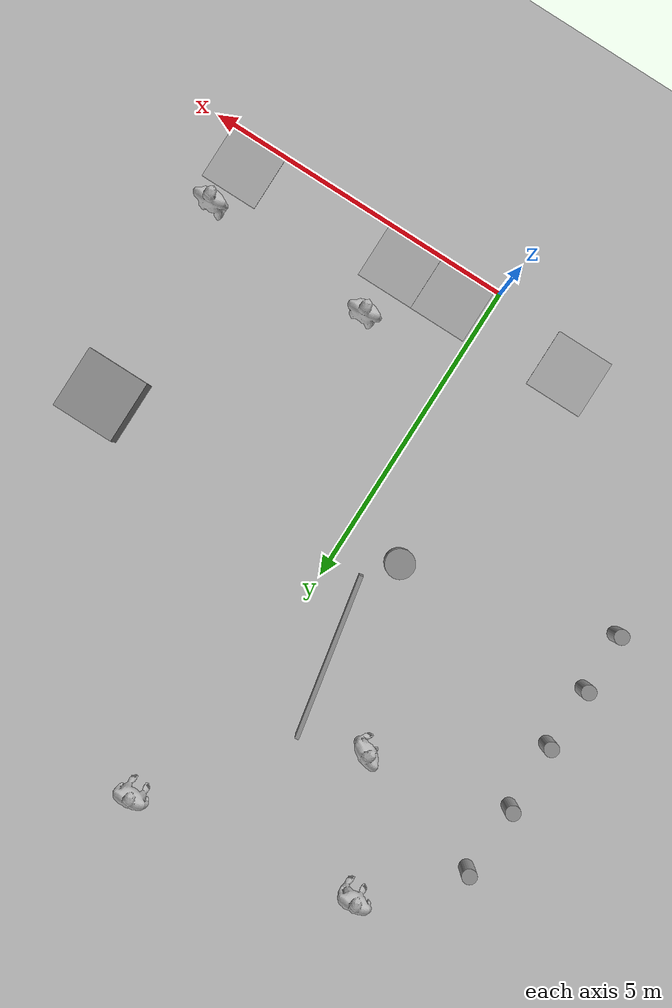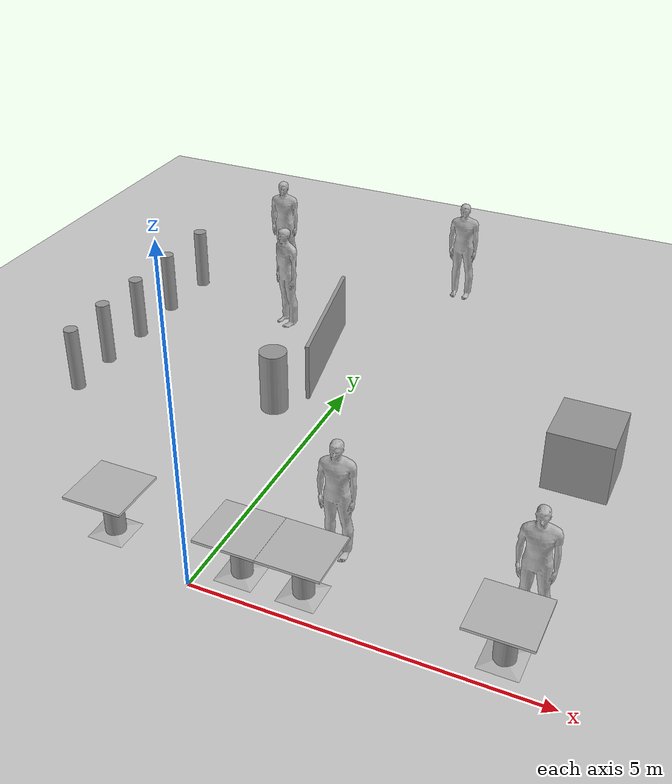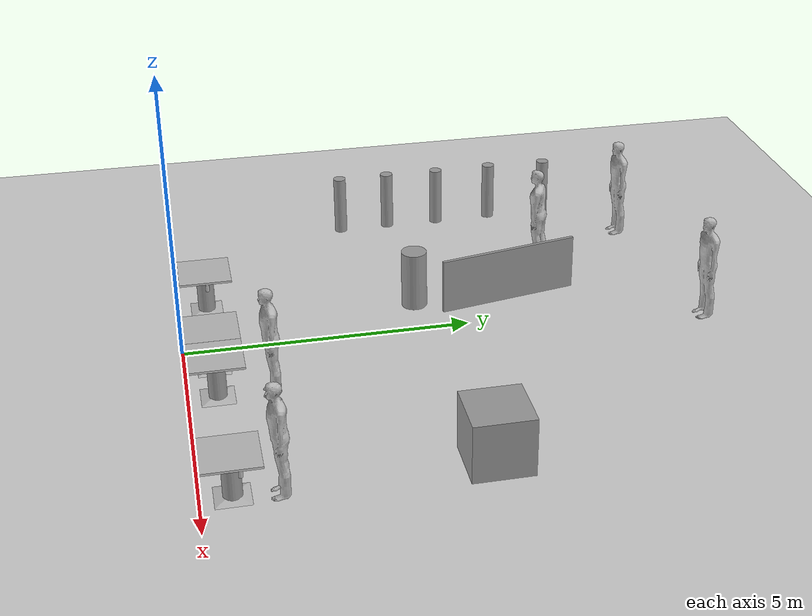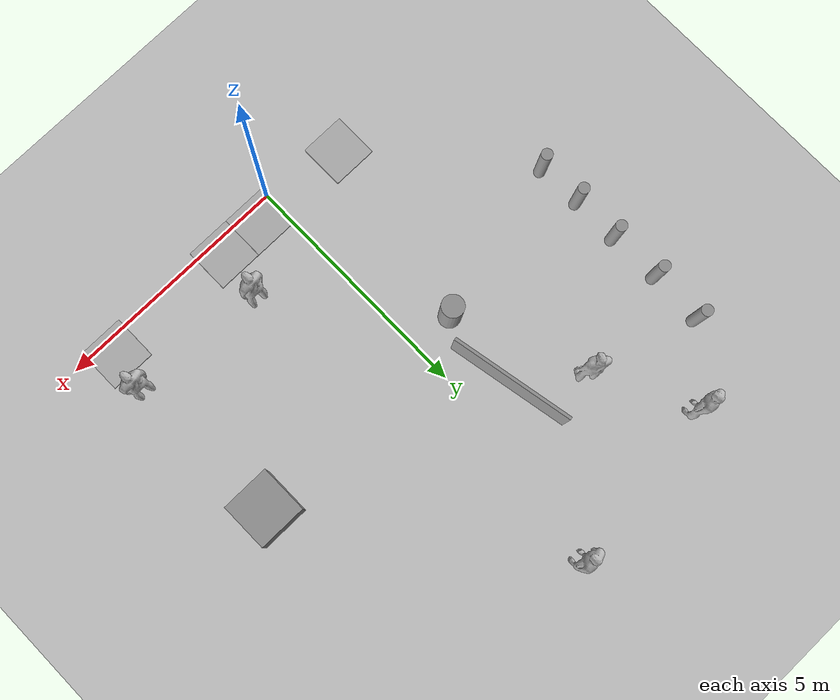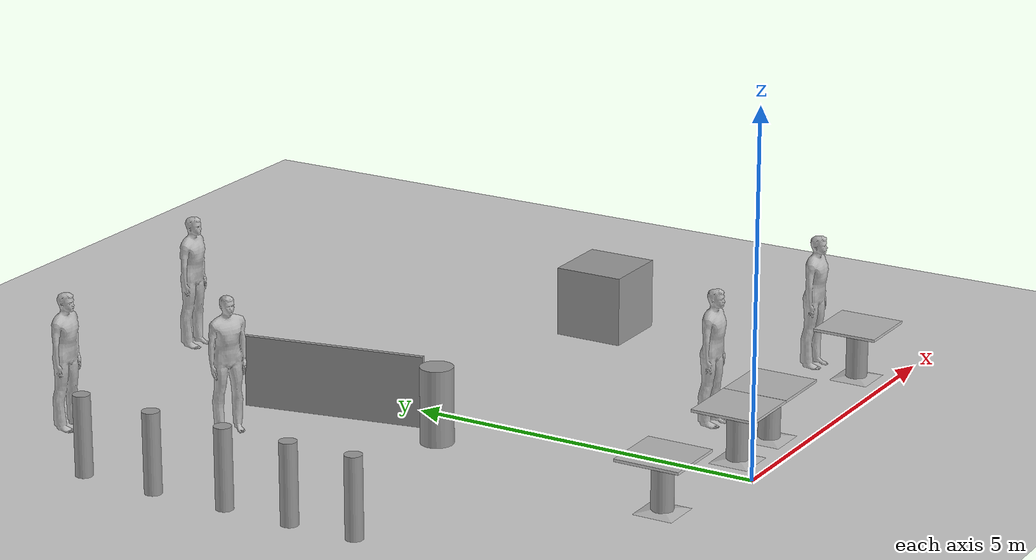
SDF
<sdf version="1.6">
 <world name="default">
  <model name="ground_plane">
   <static>1</static>
   <link name="link">
    <collision name="collision">
     <geometry><plane><normal>0 0 1</normal><size>100 100</size></plane></geometry>
     <surface><friction><ode><mu>100</mu><mu2>50</mu2></ode></friction></surface>
    </collision>
    <visual name="visual">
     <cast_shadows>0</cast_shadows>
     <geometry><plane><normal>0 0 1</normal><size>100 100</size></plane></geometry>
     <material>
      <script><uri>file://media/materials/scripts/gazebo.material</uri><name>Gazebo/Grey</name></script>
     </material>
    </visual>
   </link>
  </model>
  <model name="person_standing">
   <link name="link">
    <inertial>
     <pose>0 -0.1 0.95 0 -0 0</pose>
     <mass>80</mass>
     <inertia><ixx>24.88</ixx><ixy>0</ixy><ixz>0</ixz><iyy>25.73</iyy><iyz>0</iyz><izz>2.48</izz></inertia>
    </inertial>
    <collision name="bottom">
     <pose>0 -0.1 0.01 0 -0 0</pose>
     <geometry><box><size>0.5 0.35 0.02</size></box></geometry>
    </collision>
    <collision name="person">
     <pose>0 0 0.02 0.04 -0 0</pose>
     <geometry><mesh><uri>model://person_standing/meshes/standing.dae</uri></mesh></geometry>
    </collision>
    <visual name="visual">
     <pose>0 0 0.02 0.04 -0 0</pose>
     <geometry><mesh><uri>model://person_standing/meshes/standing.dae</uri></mesh></geometry>
    </visual>
   </link>
   <pose>-1.91141 6.86082 -1e-06 -1e-06 1e-06 -0.572801</pose>
  </model>
  <model name="person_standing_0">
   <link name="link">
    <inertial>
     <pose>0 -0.1 0.95 0 -0 0</pose>
     <mass>80</mass>
     <inertia><ixx>24.88</ixx><ixy>0</ixy><ixz>0</ixz><iyy>25.73</iyy><iyz>0</iyz><izz>2.48</izz></inertia>
    </inertial>
    <collision name="bottom">
     <pose>0 -0.1 0.01 0 -0 0</pose>
     <geometry><box><size>0.5 0.35 0.02</size></box></geometry>
    </collision>
    <collision name="person">
     <pose>0 0 0.02 0.04 -0 0</pose>
     <geometry><mesh><uri>model://person_standing/meshes/standing.dae</uri></mesh></geometry>
    </collision>
    <visual name="visual">
     <pose>0 0 0.02 0.04 -0 0</pose>
     <geometry><mesh><uri>model://person_standing/meshes/standing.dae</uri></mesh></geometry>
    </visual>
   </link>
   <pose>0.595831 9.25089 -1e-06 -1e-06 1e-06 -0.001806</pose>
  </model>
  <model name="person_standing_1">
   <link name="link">
    <inertial>
     <pose>0 -0.1 0.95 0 -0 0</pose>
     <mass>80</mass>
     <inertia><ixx>24.88</ixx><ixy>0</ixy><ixz>0</ixz><iyy>25.73</iyy><iyz>0</iyz><izz>2.48</izz></inertia>
    </inertial>
    <collision name="bottom">
     <pose>0 -0.1 0.01 0 -0 0</pose>
     <geometry><box><size>0.5 0.35 0.02</size></box></geometry>
    </collision>
    <collision name="person">
     <pose>0 0 0.02 0.04 -0 0</pose>
     <geometry><mesh><uri>model://person_standing/meshes/standing.dae</uri></mesh></geometry>
    </collision>
    <visual name="visual">
     <pose>0 0 0.02 0.04 -0 0</pose>
     <geometry><mesh><uri>model://person_standing/meshes/standing.dae</uri></mesh></geometry>
    </visual>
   </link>
   <pose>4.29476 1.29139 0 -1e-06 -1e-06 -0.002117</pose>
  </model>
  <model name="person_standing_1_clone_5">
   <link name="link">
    <inertial>
     <pose>0 -0.1 0.95 0 -0 0</pose>
     <mass>80</mass>
     <inertia><ixx>24.88</ixx><ixy>0</ixy><ixz>0</ixz><iyy>25.73</iyy><iyz>0</iyz><izz>2.48</izz></inertia>
    </inertial>
    <collision name="bottom">
     <pose>0 -0.1 0.01 0 -0 0</pose>
     <geometry><box><size>0.5 0.35 0.02</size></box></geometry>
    </collision>
    <collision name="person">
     <pose>0 0 0.02 0.04 -0 0</pose>
     <geometry><mesh><uri>model://person_standing/meshes/standing.dae</uri></mesh></geometry>
    </collision>
    <visual name="visual">
     <pose>0 0 0.02 0.04 -0 0</pose>
     <geometry><mesh><uri>model://person_standing/meshes/standing.dae</uri></mesh></geometry>
    </visual>
   </link>
   <pose>1.53594 1.46348 0 1e-06 1e-06 -0.002811</pose>
  </model>
  <model name="cafe_table_clone_4">
   <link name="link">
    <visual name="visual">
     <geometry><mesh><uri>model://cafe_table/meshes/cafe_table.dae</uri></mesh></geometry>
     <material><shader type="pixel"/><emissive>0 0 0 1</emissive></material>
    </visual>
    <collision name="surface">
     <pose>0 0 0.755 0 -0 0</pose>
     <geometry><box><size>0.913 0.913 0.04</size></box></geometry>
     <surface>
      <friction>
       <ode><mu>1</mu><mu2>1</mu2><fdir1>0 0 0</fdir1><slip1>0</slip1><slip2>0</slip2></ode>
       <torsional>
        <coefficient>1</coefficient>
        <patch_radius>0</patch_radius>
        <surface_radius>0</surface_radius>
        <use_patch_radius>1</use_patch_radius>
        <ode><slip>0</slip></ode>
       </torsional>
      </friction>
      <bounce><restitution_coefficient>0</restitution_coefficient><threshold>1e+06</threshold></bounce>
      <contact>
       <collide_without_contact>0</collide_without_contact>
       <collide_without_contact_bitmask>1</collide_without_contact_bitmask>
       <collide_bitmask>1</collide_bitmask>
       <ode>
        <soft_cfm>0</soft_cfm>
        <soft_erp>0.2</soft_erp>
        <kp>1e+13</kp>
        <kd>1</kd>
        <max_vel>0.01</max_vel>
        <min_depth>0</min_depth>
       </ode>
       <bullet>
        <split_impulse>1</split_impulse>
        <split_impulse_penetration_threshold>-0.01</split_impulse_penetration_threshold>
        <soft_cfm>0</soft_cfm>
        <soft_erp>0.2</soft_erp>
        <kp>1e+13</kp>
        <kd>1</kd>
       </bullet>
      </contact>
     </surface>
    </collision>
    <collision name="column">
     <pose>0 0 0.37 0 -0 0</pose>
     <geometry><box><size>0.042 0.042 0.74</size></box></geometry>
     <surface>
      <friction>
       <ode><mu>1</mu><mu2>1</mu2><fdir1>0 0 0</fdir1><slip1>0</slip1><slip2>0</slip2></ode>
       <torsional>
        <coefficient>1</coefficient>
        <patch_radius>0</patch_radius>
        <surface_radius>0</surface_radius>
        <use_patch_radius>1</use_patch_radius>
        <ode><slip>0</slip></ode>
       </torsional>
      </friction>
      <bounce><restitution_coefficient>0</restitution_coefficient><threshold>1e+06</threshold></bounce>
      <contact>
       <collide_without_contact>0</collide_without_contact>
       <collide_without_contact_bitmask>1</collide_without_contact_bitmask>
       <collide_bitmask>1</collide_bitmask>
       <ode>
        <soft_cfm>0</soft_cfm>
        <soft_erp>0.2</soft_erp>
        <kp>1e+13</kp>
        <kd>1</kd>
        <max_vel>0.01</max_vel>
        <min_depth>0</min_depth>
       </ode>
       <bullet>
        <split_impulse>1</split_impulse>
        <split_impulse_penetration_threshold>-0.01</split_impulse_penetration_threshold>
        <soft_cfm>0</soft_cfm>
        <soft_erp>0.2</soft_erp>
        <kp>1e+13</kp>
        <kd>1</kd>
       </bullet>
      </contact>
     </surface>
    </collision>
    <collision name="base">
     <pose>0 0 0.02 0 -0 0</pose>
     <geometry><box><size>0.56 0.56 0.04</size></box></geometry>
     <surface>
      <friction>
       <ode><mu>1</mu><mu2>1</mu2><fdir1>0 0 0</fdir1><slip1>0</slip1><slip2>0</slip2></ode>
       <torsional>
        <coefficient>1</coefficient>
        <patch_radius>0</patch_radius>
        <surface_radius>0</surface_radius>
        <use_patch_radius>1</use_patch_radius>
        <ode><slip>0</slip></ode>
       </torsional>
      </friction>
      <bounce><restitution_coefficient>0</restitution_coefficient><threshold>1e+06</threshold></bounce>
      <contact>
       <collide_without_contact>0</collide_without_contact>
       <collide_without_contact_bitmask>1</collide_without_contact_bitmask>
       <collide_bitmask>1</collide_bitmask>
       <ode>
        <soft_cfm>0</soft_cfm>
        <soft_erp>0.2</soft_erp>
        <kp>1e+13</kp>
        <kd>1</kd>
        <max_vel>0.01</max_vel>
        <min_depth>0</min_depth>
       </ode>
       <bullet>
        <split_impulse>1</split_impulse>
        <split_impulse_penetration_threshold>-0.01</split_impulse_penetration_threshold>
        <soft_cfm>0</soft_cfm>
        <soft_erp>0.2</soft_erp>
        <kp>1e+13</kp>
        <kd>1</kd>
       </bullet>
      </contact>
     </surface>
    </collision>
   </link>
   <link name="link_1">
    <pose>0.006591 0.003726 0.34636 0 -0 0</pose>
    <inertial>
     <mass>0.0583743</mass>
     <inertia>
      <ixx>0.00238915</ixx>
      <ixy>0</ixy>
      <ixz>0</ixz>
      <iyy>0.00238915</iyy>
      <iyz>0</iyz>
      <izz>0.000654099</izz>
     </inertia>
    </inertial>
    <visual name="visual">
     <geometry><cylinder><radius>0.149701</radius><length>0.65108</length></cylinder></geometry>
     <material>
      <lighting>1</lighting>
      <script><uri>file://media/materials/scripts/gazebo.material</uri><name>Gazebo/Grey</name></script>
      <shader type="pixel"/>
      <ambient>0.3 0.3 0.3 1</ambient>
      <diffuse>0.7 0.7 0.7 1</diffuse>
      <specular>0.01 0.01 0.01 1</specular>
      <emissive>0 0 0 1</emissive>
     </material>
    </visual>
    <collision name="collision">
     <geometry><cylinder><radius>0.149701</radius><length>0.65108</length></cylinder></geometry>
     <surface>
      <friction>
       <ode><mu>1</mu><mu2>1</mu2><fdir1>0 0 0</fdir1><slip1>0</slip1><slip2>0</slip2></ode>
       <torsional>
        <coefficient>1</coefficient>
        <patch_radius>0</patch_radius>
        <surface_radius>0</surface_radius>
        <use_patch_radius>1</use_patch_radius>
        <ode><slip>0</slip></ode>
       </torsional>
      </friction>
      <bounce><restitution_coefficient>0</restitution_coefficient><threshold>1e+06</threshold></bounce>
      <contact>
       <collide_without_contact>0</collide_without_contact>
       <collide_without_contact_bitmask>1</collide_without_contact_bitmask>
       <collide_bitmask>1</collide_bitmask>
       <ode>
        <soft_cfm>0</soft_cfm>
        <soft_erp>0.2</soft_erp>
        <kp>1e+13</kp>
        <kd>1</kd>
        <max_vel>0.01</max_vel>
        <min_depth>0</min_depth>
       </ode>
       <bullet>
        <split_impulse>1</split_impulse>
        <split_impulse_penetration_threshold>-0.01</split_impulse_penetration_threshold>
        <soft_cfm>0</soft_cfm>
        <soft_erp>0.2</soft_erp>
        <kp>1e+13</kp>
        <kd>1</kd>
       </bullet>
      </contact>
     </surface>
    </collision>
   </link>
   <joint name="link_JOINT_0" type="revolute">
    <parent>link</parent>
    <child>link_1</child>
    <axis>
     <xyz>1 0 0</xyz>
     <use_parent_model_frame>0</use_parent_model_frame>
     <limit>
      <lower>-1.79769e+308</lower>
      <upper>1.79769e+308</upper>
      <effort>-1</effort>
      <velocity>-1</velocity>
     </limit>
     <dynamics>
      <spring_reference>0</spring_reference>
      <spring_stiffness>0</spring_stiffness>
      <damping>0</damping>
     </dynamics>
    </axis>
    <physics>
     <ode><limit><cfm>0</cfm><erp>0.2</erp></limit><suspension><cfm>0</cfm><erp>0.2</erp></suspension></ode>
    </physics>
   </joint>
   <static>1</static>
   <pose>-1.48825 0.511063 0 0 -0 0</pose>
  </model>
  <model name="cafe_table_clone_4_clone">
   <link name="link">
    <visual name="visual">
     <geometry><mesh><uri>model://cafe_table/meshes/cafe_table.dae</uri></mesh></geometry>
     <material><shader type="pixel"/><emissive>0 0 0 1</emissive></material>
    </visual>
    <collision name="surface">
     <pose>0 0 0.755 0 -0 0</pose>
     <geometry><box><size>0.913 0.913 0.04</size></box></geometry>
     <surface>
      <friction>
       <ode><mu>1</mu><mu2>1</mu2><fdir1>0 0 0</fdir1><slip1>0</slip1><slip2>0</slip2></ode>
       <torsional>
        <coefficient>1</coefficient>
        <patch_radius>0</patch_radius>
        <surface_radius>0</surface_radius>
        <use_patch_radius>1</use_patch_radius>
        <ode><slip>0</slip></ode>
       </torsional>
      </friction>
      <bounce><restitution_coefficient>0</restitution_coefficient><threshold>1e+06</threshold></bounce>
      <contact>
       <collide_without_contact>0</collide_without_contact>
       <collide_without_contact_bitmask>1</collide_without_contact_bitmask>
       <collide_bitmask>1</collide_bitmask>
       <ode>
        <soft_cfm>0</soft_cfm>
        <soft_erp>0.2</soft_erp>
        <kp>1e+13</kp>
        <kd>1</kd>
        <max_vel>0.01</max_vel>
        <min_depth>0</min_depth>
       </ode>
       <bullet>
        <split_impulse>1</split_impulse>
        <split_impulse_penetration_threshold>-0.01</split_impulse_penetration_threshold>
        <soft_cfm>0</soft_cfm>
        <soft_erp>0.2</soft_erp>
        <kp>1e+13</kp>
        <kd>1</kd>
       </bullet>
      </contact>
     </surface>
    </collision>
    <collision name="column">
     <pose>0 0 0.37 0 -0 0</pose>
     <geometry><box><size>0.042 0.042 0.74</size></box></geometry>
     <surface>
      <friction>
       <ode><mu>1</mu><mu2>1</mu2><fdir1>0 0 0</fdir1><slip1>0</slip1><slip2>0</slip2></ode>
       <torsional>
        <coefficient>1</coefficient>
        <patch_radius>0</patch_radius>
        <surface_radius>0</surface_radius>
        <use_patch_radius>1</use_patch_radius>
        <ode><slip>0</slip></ode>
       </torsional>
      </friction>
      <bounce><restitution_coefficient>0</restitution_coefficient><threshold>1e+06</threshold></bounce>
      <contact>
       <collide_without_contact>0</collide_without_contact>
       <collide_without_contact_bitmask>1</collide_without_contact_bitmask>
       <collide_bitmask>1</collide_bitmask>
       <ode>
        <soft_cfm>0</soft_cfm>
        <soft_erp>0.2</soft_erp>
        <kp>1e+13</kp>
        <kd>1</kd>
        <max_vel>0.01</max_vel>
        <min_depth>0</min_depth>
       </ode>
       <bullet>
        <split_impulse>1</split_impulse>
        <split_impulse_penetration_threshold>-0.01</split_impulse_penetration_threshold>
        <soft_cfm>0</soft_cfm>
        <soft_erp>0.2</soft_erp>
        <kp>1e+13</kp>
        <kd>1</kd>
       </bullet>
      </contact>
     </surface>
    </collision>
    <collision name="base">
     <pose>0 0 0.02 0 -0 0</pose>
     <geometry><box><size>0.56 0.56 0.04</size></box></geometry>
     <surface>
      <friction>
       <ode><mu>1</mu><mu2>1</mu2><fdir1>0 0 0</fdir1><slip1>0</slip1><slip2>0</slip2></ode>
       <torsional>
        <coefficient>1</coefficient>
        <patch_radius>0</patch_radius>
        <surface_radius>0</surface_radius>
        <use_patch_radius>1</use_patch_radius>
        <ode><slip>0</slip></ode>
       </torsional>
      </friction>
      <bounce><restitution_coefficient>0</restitution_coefficient><threshold>1e+06</threshold></bounce>
      <contact>
       <collide_without_contact>0</collide_without_contact>
       <collide_without_contact_bitmask>1</collide_without_contact_bitmask>
       <collide_bitmask>1</collide_bitmask>
       <ode>
        <soft_cfm>0</soft_cfm>
        <soft_erp>0.2</soft_erp>
        <kp>1e+13</kp>
        <kd>1</kd>
        <max_vel>0.01</max_vel>
        <min_depth>0</min_depth>
       </ode>
       <bullet>
        <split_impulse>1</split_impulse>
        <split_impulse_penetration_threshold>-0.01</split_impulse_penetration_threshold>
        <soft_cfm>0</soft_cfm>
        <soft_erp>0.2</soft_erp>
        <kp>1e+13</kp>
        <kd>1</kd>
       </bullet>
      </contact>
     </surface>
    </collision>
   </link>
   <link name="link_1">
    <pose>0.006591 0.003726 0.34636 0 -0 0</pose>
    <inertial>
     <mass>0.0583743</mass>
     <inertia>
      <ixx>0.00238915</ixx>
      <ixy>0</ixy>
      <ixz>0</ixz>
      <iyy>0.00238915</iyy>
      <iyz>0</iyz>
      <izz>0.000654099</izz>
     </inertia>
    </inertial>
    <visual name="visual">
     <geometry><cylinder><radius>0.149701</radius><length>0.65108</length></cylinder></geometry>
     <material>
      <lighting>1</lighting>
      <script><uri>file://media/materials/scripts/gazebo.material</uri><name>Gazebo/Grey</name></script>
      <shader type="pixel"/>
      <ambient>0.3 0.3 0.3 1</ambient>
      <diffuse>0.7 0.7 0.7 1</diffuse>
      <specular>0.01 0.01 0.01 1</specular>
      <emissive>0 0 0 1</emissive>
     </material>
    </visual>
    <collision name="collision">
     <geometry><cylinder><radius>0.149701</radius><length>0.65108</length></cylinder></geometry>
     <surface>
      <friction>
       <ode><mu>1</mu><mu2>1</mu2><fdir1>0 0 0</fdir1><slip1>0</slip1><slip2>0</slip2></ode>
       <torsional>
        <coefficient>1</coefficient>
        <patch_radius>0</patch_radius>
        <surface_radius>0</surface_radius>
        <use_patch_radius>1</use_patch_radius>
        <ode><slip>0</slip></ode>
       </torsional>
      </friction>
      <bounce><restitution_coefficient>0</restitution_coefficient><threshold>1e+06</threshold></bounce>
      <contact>
       <collide_without_contact>0</collide_without_contact>
       <collide_without_contact_bitmask>1</collide_without_contact_bitmask>
       <collide_bitmask>1</collide_bitmask>
       <ode>
        <soft_cfm>0</soft_cfm>
        <soft_erp>0.2</soft_erp>
        <kp>1e+13</kp>
        <kd>1</kd>
        <max_vel>0.01</max_vel>
        <min_depth>0</min_depth>
       </ode>
       <bullet>
        <split_impulse>1</split_impulse>
        <split_impulse_penetration_threshold>-0.01</split_impulse_penetration_threshold>
        <soft_cfm>0</soft_cfm>
        <soft_erp>0.2</soft_erp>
        <kp>1e+13</kp>
        <kd>1</kd>
       </bullet>
      </contact>
     </surface>
    </collision>
   </link>
   <joint name="link_JOINT_0" type="revolute">
    <parent>link</parent>
    <child>link_1</child>
    <axis>
     <xyz>1 0 0</xyz>
     <use_parent_model_frame>0</use_parent_model_frame>
     <limit>
      <lower>-1.79769e+308</lower>
      <upper>1.79769e+308</upper>
      <effort>-1</effort>
      <velocity>-1</velocity>
     </limit>
     <dynamics>
      <spring_reference>0</spring_reference>
      <spring_stiffness>0</spring_stiffness>
      <damping>0</damping>
     </dynamics>
    </axis>
    <physics>
     <ode><limit><cfm>0</cfm><erp>0.2</erp></limit><suspension><cfm>0</cfm><erp>0.2</erp></suspension></ode>
    </physics>
   </joint>
   <static>1</static>
   <pose>0.543995 0.489415 0 0 -0 0</pose>
  </model>
  <model name="cafe_table_clone_4_clone_0">
   <link name="link">
    <visual name="visual">
     <geometry><mesh><uri>model://cafe_table/meshes/cafe_table.dae</uri></mesh></geometry>
     <material><shader type="pixel"/><emissive>0 0 0 1</emissive></material>
    </visual>
    <collision name="surface">
     <pose>0 0 0.755 0 -0 0</pose>
     <geometry><box><size>0.913 0.913 0.04</size></box></geometry>
     <surface>
      <friction>
       <ode><mu>1</mu><mu2>1</mu2><fdir1>0 0 0</fdir1><slip1>0</slip1><slip2>0</slip2></ode>
       <torsional>
        <coefficient>1</coefficient>
        <patch_radius>0</patch_radius>
        <surface_radius>0</surface_radius>
        <use_patch_radius>1</use_patch_radius>
        <ode><slip>0</slip></ode>
       </torsional>
      </friction>
      <bounce><restitution_coefficient>0</restitution_coefficient><threshold>1e+06</threshold></bounce>
      <contact>
       <collide_without_contact>0</collide_without_contact>
       <collide_without_contact_bitmask>1</collide_without_contact_bitmask>
       <collide_bitmask>1</collide_bitmask>
       <ode>
        <soft_cfm>0</soft_cfm>
        <soft_erp>0.2</soft_erp>
        <kp>1e+13</kp>
        <kd>1</kd>
        <max_vel>0.01</max_vel>
        <min_depth>0</min_depth>
       </ode>
       <bullet>
        <split_impulse>1</split_impulse>
        <split_impulse_penetration_threshold>-0.01</split_impulse_penetration_threshold>
        <soft_cfm>0</soft_cfm>
        <soft_erp>0.2</soft_erp>
        <kp>1e+13</kp>
        <kd>1</kd>
       </bullet>
      </contact>
     </surface>
    </collision>
    <collision name="column">
     <pose>0 0 0.37 0 -0 0</pose>
     <geometry><box><size>0.042 0.042 0.74</size></box></geometry>
     <surface>
      <friction>
       <ode><mu>1</mu><mu2>1</mu2><fdir1>0 0 0</fdir1><slip1>0</slip1><slip2>0</slip2></ode>
       <torsional>
        <coefficient>1</coefficient>
        <patch_radius>0</patch_radius>
        <surface_radius>0</surface_radius>
        <use_patch_radius>1</use_patch_radius>
        <ode><slip>0</slip></ode>
       </torsional>
      </friction>
      <bounce><restitution_coefficient>0</restitution_coefficient><threshold>1e+06</threshold></bounce>
      <contact>
       <collide_without_contact>0</collide_without_contact>
       <collide_without_contact_bitmask>1</collide_without_contact_bitmask>
       <collide_bitmask>1</collide_bitmask>
       <ode>
        <soft_cfm>0</soft_cfm>
        <soft_erp>0.2</soft_erp>
        <kp>1e+13</kp>
        <kd>1</kd>
        <max_vel>0.01</max_vel>
        <min_depth>0</min_depth>
       </ode>
       <bullet>
        <split_impulse>1</split_impulse>
        <split_impulse_penetration_threshold>-0.01</split_impulse_penetration_threshold>
        <soft_cfm>0</soft_cfm>
        <soft_erp>0.2</soft_erp>
        <kp>1e+13</kp>
        <kd>1</kd>
       </bullet>
      </contact>
     </surface>
    </collision>
    <collision name="base">
     <pose>0 0 0.02 0 -0 0</pose>
     <geometry><box><size>0.56 0.56 0.04</size></box></geometry>
     <surface>
      <friction>
       <ode><mu>1</mu><mu2>1</mu2><fdir1>0 0 0</fdir1><slip1>0</slip1><slip2>0</slip2></ode>
       <torsional>
        <coefficient>1</coefficient>
        <patch_radius>0</patch_radius>
        <surface_radius>0</surface_radius>
        <use_patch_radius>1</use_patch_radius>
        <ode><slip>0</slip></ode>
       </torsional>
      </friction>
      <bounce><restitution_coefficient>0</restitution_coefficient><threshold>1e+06</threshold></bounce>
      <contact>
       <collide_without_contact>0</collide_without_contact>
       <collide_without_contact_bitmask>1</collide_without_contact_bitmask>
       <collide_bitmask>1</collide_bitmask>
       <ode>
        <soft_cfm>0</soft_cfm>
        <soft_erp>0.2</soft_erp>
        <kp>1e+13</kp>
        <kd>1</kd>
        <max_vel>0.01</max_vel>
        <min_depth>0</min_depth>
       </ode>
       <bullet>
        <split_impulse>1</split_impulse>
        <split_impulse_penetration_threshold>-0.01</split_impulse_penetration_threshold>
        <soft_cfm>0</soft_cfm>
        <soft_erp>0.2</soft_erp>
        <kp>1e+13</kp>
        <kd>1</kd>
       </bullet>
      </contact>
     </surface>
    </collision>
   </link>
   <link name="link_1">
    <pose>0.006591 0.003726 0.34636 0 -0 0</pose>
    <inertial>
     <mass>0.0583743</mass>
     <inertia>
      <ixx>0.00238915</ixx>
      <ixy>0</ixy>
      <ixz>0</ixz>
      <iyy>0.00238915</iyy>
      <iyz>0</iyz>
      <izz>0.000654099</izz>
     </inertia>
    </inertial>
    <visual name="visual">
     <geometry><cylinder><radius>0.149701</radius><length>0.65108</length></cylinder></geometry>
     <material>
      <lighting>1</lighting>
      <script><uri>file://media/materials/scripts/gazebo.material</uri><name>Gazebo/Grey</name></script>
      <shader type="pixel"/>
      <ambient>0.3 0.3 0.3 1</ambient>
      <diffuse>0.7 0.7 0.7 1</diffuse>
      <specular>0.01 0.01 0.01 1</specular>
      <emissive>0 0 0 1</emissive>
     </material>
    </visual>
    <collision name="collision">
     <geometry><cylinder><radius>0.149701</radius><length>0.65108</length></cylinder></geometry>
     <surface>
      <friction>
       <ode><mu>1</mu><mu2>1</mu2><fdir1>0 0 0</fdir1><slip1>0</slip1><slip2>0</slip2></ode>
       <torsional>
        <coefficient>1</coefficient>
        <patch_radius>0</patch_radius>
        <surface_radius>0</surface_radius>
        <use_patch_radius>1</use_patch_radius>
        <ode><slip>0</slip></ode>
       </torsional>
      </friction>
      <bounce><restitution_coefficient>0</restitution_coefficient><threshold>1e+06</threshold></bounce>
      <contact>
       <collide_without_contact>0</collide_without_contact>
       <collide_without_contact_bitmask>1</collide_without_contact_bitmask>
       <collide_bitmask>1</collide_bitmask>
       <ode>
        <soft_cfm>0</soft_cfm>
        <soft_erp>0.2</soft_erp>
        <kp>1e+13</kp>
        <kd>1</kd>
        <max_vel>0.01</max_vel>
        <min_depth>0</min_depth>
       </ode>
       <bullet>
        <split_impulse>1</split_impulse>
        <split_impulse_penetration_threshold>-0.01</split_impulse_penetration_threshold>
        <soft_cfm>0</soft_cfm>
        <soft_erp>0.2</soft_erp>
        <kp>1e+13</kp>
        <kd>1</kd>
       </bullet>
      </contact>
     </surface>
    </collision>
   </link>
   <joint name="link_JOINT_0" type="revolute">
    <parent>link</parent>
    <child>link_1</child>
    <axis>
     <xyz>1 0 0</xyz>
     <use_parent_model_frame>0</use_parent_model_frame>
     <limit>
      <lower>-1.79769e+308</lower>
      <upper>1.79769e+308</upper>
      <effort>-1</effort>
      <velocity>-1</velocity>
     </limit>
     <dynamics>
      <spring_reference>0</spring_reference>
      <spring_stiffness>0</spring_stiffness>
      <damping>0</damping>
     </dynamics>
    </axis>
    <physics>
     <ode><limit><cfm>0</cfm><erp>0.2</erp></limit><suspension><cfm>0</cfm><erp>0.2</erp></suspension></ode>
    </physics>
   </joint>
   <static>1</static>
   <pose>1.46012 0.488325 0 0 -0 0</pose>
  </model>
  <model name="cafe_table_clone_4_clone_1">
   <link name="link">
    <visual name="visual">
     <geometry><mesh><uri>model://cafe_table/meshes/cafe_table.dae</uri></mesh></geometry>
     <material><shader type="pixel"/><emissive>0 0 0 1</emissive></material>
    </visual>
    <collision name="surface">
     <pose>0 0 0.755 0 -0 0</pose>
     <geometry><box><size>0.913 0.913 0.04</size></box></geometry>
     <surface>
      <friction>
       <ode><mu>1</mu><mu2>1</mu2><fdir1>0 0 0</fdir1><slip1>0</slip1><slip2>0</slip2></ode>
       <torsional>
        <coefficient>1</coefficient>
        <patch_radius>0</patch_radius>
        <surface_radius>0</surface_radius>
        <use_patch_radius>1</use_patch_radius>
        <ode><slip>0</slip></ode>
       </torsional>
      </friction>
      <bounce><restitution_coefficient>0</restitution_coefficient><threshold>1e+06</threshold></bounce>
      <contact>
       <collide_without_contact>0</collide_without_contact>
       <collide_without_contact_bitmask>1</collide_without_contact_bitmask>
       <collide_bitmask>1</collide_bitmask>
       <ode>
        <soft_cfm>0</soft_cfm>
        <soft_erp>0.2</soft_erp>
        <kp>1e+13</kp>
        <kd>1</kd>
        <max_vel>0.01</max_vel>
        <min_depth>0</min_depth>
       </ode>
       <bullet>
        <split_impulse>1</split_impulse>
        <split_impulse_penetration_threshold>-0.01</split_impulse_penetration_threshold>
        <soft_cfm>0</soft_cfm>
        <soft_erp>0.2</soft_erp>
        <kp>1e+13</kp>
        <kd>1</kd>
       </bullet>
      </contact>
     </surface>
    </collision>
    <collision name="column">
     <pose>0 0 0.37 0 -0 0</pose>
     <geometry><box><size>0.042 0.042 0.74</size></box></geometry>
     <surface>
      <friction>
       <ode><mu>1</mu><mu2>1</mu2><fdir1>0 0 0</fdir1><slip1>0</slip1><slip2>0</slip2></ode>
       <torsional>
        <coefficient>1</coefficient>
        <patch_radius>0</patch_radius>
        <surface_radius>0</surface_radius>
        <use_patch_radius>1</use_patch_radius>
        <ode><slip>0</slip></ode>
       </torsional>
      </friction>
      <bounce><restitution_coefficient>0</restitution_coefficient><threshold>1e+06</threshold></bounce>
      <contact>
       <collide_without_contact>0</collide_without_contact>
       <collide_without_contact_bitmask>1</collide_without_contact_bitmask>
       <collide_bitmask>1</collide_bitmask>
       <ode>
        <soft_cfm>0</soft_cfm>
        <soft_erp>0.2</soft_erp>
        <kp>1e+13</kp>
        <kd>1</kd>
        <max_vel>0.01</max_vel>
        <min_depth>0</min_depth>
       </ode>
       <bullet>
        <split_impulse>1</split_impulse>
        <split_impulse_penetration_threshold>-0.01</split_impulse_penetration_threshold>
        <soft_cfm>0</soft_cfm>
        <soft_erp>0.2</soft_erp>
        <kp>1e+13</kp>
        <kd>1</kd>
       </bullet>
      </contact>
     </surface>
    </collision>
    <collision name="base">
     <pose>0 0 0.02 0 -0 0</pose>
     <geometry><box><size>0.56 0.56 0.04</size></box></geometry>
     <surface>
      <friction>
       <ode><mu>1</mu><mu2>1</mu2><fdir1>0 0 0</fdir1><slip1>0</slip1><slip2>0</slip2></ode>
       <torsional>
        <coefficient>1</coefficient>
        <patch_radius>0</patch_radius>
        <surface_radius>0</surface_radius>
        <use_patch_radius>1</use_patch_radius>
        <ode><slip>0</slip></ode>
       </torsional>
      </friction>
      <bounce><restitution_coefficient>0</restitution_coefficient><threshold>1e+06</threshold></bounce>
      <contact>
       <collide_without_contact>0</collide_without_contact>
       <collide_without_contact_bitmask>1</collide_without_contact_bitmask>
       <collide_bitmask>1</collide_bitmask>
       <ode>
        <soft_cfm>0</soft_cfm>
        <soft_erp>0.2</soft_erp>
        <kp>1e+13</kp>
        <kd>1</kd>
        <max_vel>0.01</max_vel>
        <min_depth>0</min_depth>
       </ode>
       <bullet>
        <split_impulse>1</split_impulse>
        <split_impulse_penetration_threshold>-0.01</split_impulse_penetration_threshold>
        <soft_cfm>0</soft_cfm>
        <soft_erp>0.2</soft_erp>
        <kp>1e+13</kp>
        <kd>1</kd>
       </bullet>
      </contact>
     </surface>
    </collision>
   </link>
   <link name="link_1">
    <pose>0.006591 0.003726 0.34636 0 -0 0</pose>
    <inertial>
     <mass>0.0583743</mass>
     <inertia>
      <ixx>0.00238915</ixx>
      <ixy>0</ixy>
      <ixz>0</ixz>
      <iyy>0.00238915</iyy>
      <iyz>0</iyz>
      <izz>0.000654099</izz>
     </inertia>
    </inertial>
    <visual name="visual">
     <geometry><cylinder><radius>0.149701</radius><length>0.65108</length></cylinder></geometry>
     <material>
      <lighting>1</lighting>
      <script><uri>file://media/materials/scripts/gazebo.material</uri><name>Gazebo/Grey</name></script>
      <shader type="pixel"/>
      <ambient>0.3 0.3 0.3 1</ambient>
      <diffuse>0.7 0.7 0.7 1</diffuse>
      <specular>0.01 0.01 0.01 1</specular>
      <emissive>0 0 0 1</emissive>
     </material>
    </visual>
    <collision name="collision">
     <geometry><cylinder><radius>0.149701</radius><length>0.65108</length></cylinder></geometry>
     <surface>
      <friction>
       <ode><mu>1</mu><mu2>1</mu2><fdir1>0 0 0</fdir1><slip1>0</slip1><slip2>0</slip2></ode>
       <torsional>
        <coefficient>1</coefficient>
        <patch_radius>0</patch_radius>
        <surface_radius>0</surface_radius>
        <use_patch_radius>1</use_patch_radius>
        <ode><slip>0</slip></ode>
       </torsional>
      </friction>
      <bounce><restitution_coefficient>0</restitution_coefficient><threshold>1e+06</threshold></bounce>
      <contact>
       <collide_without_contact>0</collide_without_contact>
       <collide_without_contact_bitmask>1</collide_without_contact_bitmask>
       <collide_bitmask>1</collide_bitmask>
       <ode>
        <soft_cfm>0</soft_cfm>
        <soft_erp>0.2</soft_erp>
        <kp>1e+13</kp>
        <kd>1</kd>
        <max_vel>0.01</max_vel>
        <min_depth>0</min_depth>
       </ode>
       <bullet>
        <split_impulse>1</split_impulse>
        <split_impulse_penetration_threshold>-0.01</split_impulse_penetration_threshold>
        <soft_cfm>0</soft_cfm>
        <soft_erp>0.2</soft_erp>
        <kp>1e+13</kp>
        <kd>1</kd>
       </bullet>
      </contact>
     </surface>
    </collision>
   </link>
   <joint name="link_JOINT_0" type="revolute">
    <parent>link</parent>
    <child>link_1</child>
    <axis>
     <xyz>1 0 0</xyz>
     <use_parent_model_frame>0</use_parent_model_frame>
     <limit>
      <lower>-1.79769e+308</lower>
      <upper>1.79769e+308</upper>
      <effort>-1</effort>
      <velocity>-1</velocity>
     </limit>
     <dynamics>
      <spring_reference>0</spring_reference>
      <spring_stiffness>0</spring_stiffness>
      <damping>0</damping>
     </dynamics>
    </axis>
    <physics>
     <ode><limit><cfm>0</cfm><erp>0.2</erp></limit><suspension><cfm>0</cfm><erp>0.2</erp></suspension></ode>
    </physics>
   </joint>
   <static>1</static>
   <pose>4.18194 0.496068 0 0 -0 0</pose>
  </model>
  <model name="coke_can">
   <link name="link">
    <inertial>
     <pose>-0.01 -0.012 0.15 0 -0 0</pose>
     <mass>0.39</mass>
     <inertia><ixx>0.00058</ixx><ixy>0</ixy><ixz>0</ixz><iyy>0.00058</iyy><iyz>0</iyz><izz>0.00019</izz></inertia>
    </inertial>
    <collision name="collision">
     <pose>0 0 -0.46 0 -0 0</pose>
     <geometry><mesh><uri>model://coke_can/meshes/coke_can.dae</uri></mesh></geometry>
     <surface>
      <friction><ode><mu>1</mu><mu2>1</mu2></ode></friction>
      <contact><ode><kp>1e+07</kp><kd>1</kd><min_depth>0.001</min_depth><max_vel>0.1</max_vel></ode></contact>
     </surface>
    </collision>
    <visual name="visual">
     <pose>0 0 -0.46 0 -0 0</pose>
     <geometry><mesh><uri>model://coke_can/meshes/coke_can.dae</uri></mesh></geometry>
    </visual>
   </link>
   <pose>-1.24184 0.552651 0.770501 -0.01307 -0.01721 0.026509</pose>
  </model>
  <model name="coke_can_clone_2">
   <link name="link">
    <inertial>
     <pose>-0.01 -0.012 0.15 0 -0 0</pose>
     <mass>0.39</mass>
     <inertia><ixx>0.00058</ixx><ixy>0</ixy><ixz>0</ixz><iyy>0.00058</iyy><iyz>0</iyz><izz>0.00019</izz></inertia>
    </inertial>
    <collision name="collision">
     <pose>0 0 -0.46 0 -0 0</pose>
     <geometry><mesh><uri>model://coke_can/meshes/coke_can.dae</uri></mesh></geometry>
     <surface>
      <friction><ode><mu>1</mu><mu2>1</mu2></ode></friction>
      <contact><ode><kp>1e+07</kp><kd>1</kd><min_depth>0.001</min_depth><max_vel>0.1</max_vel></ode></contact>
     </surface>
    </collision>
    <visual name="visual">
     <pose>0 0 -0.46 0 -0 0</pose>
     <geometry><mesh><uri>model://coke_can/meshes/coke_can.dae</uri></mesh></geometry>
    </visual>
   </link>
   <pose>4.43797 0.636705 0.770501 -0.01307 -0.01721 0.026507</pose>
  </model>
  <model name="unit_box">
   <pose>4.14762 4.47081 0.499995 1e-05 0 0.000177</pose>
   <link name="link">
    <inertial>
     <mass>1</mass>
     <inertia>
      <ixx>0.166667</ixx>
      <ixy>0</ixy>
      <ixz>0</ixz>
      <iyy>0.166667</iyy>
      <iyz>0</iyz>
      <izz>0.166667</izz>
     </inertia>
    </inertial>
    <collision name="collision"><geometry><box><size>1 1 1</size></box></geometry></collision>
    <visual name="visual">
     <geometry><box><size>1 1 1</size></box></geometry>
     <material>
      <script><name>Gazebo/Grey</name><uri>file://media/materials/scripts/gazebo.material</uri></script>
     </material>
    </visual>
   </link>
  </model>
  <model name="person_standing_0_clone">
   <link name="link">
    <inertial>
     <pose>0 -0.1 0.95 0 -0 0</pose>
     <mass>80</mass>
     <inertia><ixx>24.88</ixx><ixy>0</ixy><ixz>0</ixz><iyy>25.73</iyy><iyz>0</iyz><izz>2.48</izz></inertia>
    </inertial>
    <collision name="bottom">
     <pose>0 -0.1 0.01 0 -0 0</pose>
     <geometry><box><size>0.5 0.35 0.02</size></box></geometry>
    </collision>
    <collision name="person">
     <pose>0 0 0.02 0.04 -0 0</pose>
     <geometry><mesh><uri>model://person_standing/meshes/standing.dae</uri></mesh></geometry>
    </collision>
    <visual name="visual">
     <pose>0 0 0.02 0.04 -0 0</pose>
     <geometry><mesh><uri>model://person_standing/meshes/standing.dae</uri></mesh></geometry>
    </visual>
   </link>
   <pose>-2.95805 8.77917 -1e-06 -1e-06 2e-06 -0.001599</pose>
  </model>
  <model name="unit_cylinder">
   <pose>-0.889182 4.20335 0.533614 1e-06 -1e-06 1.6e-05</pose>
   <link name="link">
    <inertial>
     <mass>1</mass>
     <inertia><ixx>0.145833</ixx><ixy>0</ixy><ixz>0</ixz><iyy>0.145833</iyy><iyz>0</iyz><izz>0.125</izz></inertia>
    </inertial>
    <collision name="collision">
     <geometry><cylinder><radius>0.228582</radius><length>1.06723</length></cylinder></geometry>
    </collision>
    <visual name="visual">
     <geometry><cylinder><radius>0.228582</radius><length>1.06723</length></cylinder></geometry>
     <material>
      <script><name>Gazebo/Grey</name><uri>file://media/materials/scripts/gazebo.material</uri></script>
     </material>
    </visual>
   </link>
  </model>
  <model name="unit_cylinder_0">
   <pose>-4.19132 3.36358 0.558329 0 0 -0.000521</pose>
   <link name="link">
    <inertial>
     <mass>1</mass>
     <inertia><ixx>0.145833</ixx><ixy>0</ixy><ixz>0</ixz><iyy>0.145833</iyy><iyz>0</iyz><izz>0.125</izz></inertia>
    </inertial>
    <collision name="collision">
     <geometry><cylinder><radius>0.118431</radius><length>1.11667</length></cylinder></geometry>
    </collision>
    <visual name="visual">
     <geometry><cylinder><radius>0.118431</radius><length>1.11667</length></cylinder></geometry>
     <material>
      <script><name>Gazebo/Grey</name><uri>file://media/materials/scripts/gazebo.material</uri></script>
     </material>
    </visual>
   </link>
  </model>
  <model name="unit_box_0">
   <pose>-0.747975 5.91608 0.499927 5.7e-05 -2e-06 0.190743</pose>
   <link name="link">
    <inertial>
     <mass>1</mass>
     <inertia>
      <ixx>0.166667</ixx>
      <ixy>0</ixy>
      <ixz>0</ixz>
      <iyy>0.166667</iyy>
      <iyz>0</iyz>
      <izz>0.166667</izz>
     </inertia>
    </inertial>
    <collision name="collision"><geometry><box><size>0.0642753 2.57233 1</size></box></geometry></collision>
    <visual name="visual">
     <geometry><box><size>0.0642753 2.57233 1</size></box></geometry>
     <material>
      <script><name>Gazebo/Grey</name><uri>file://media/materials/scripts/gazebo.material</uri></script>
     </material>
    </visual>
   </link>
  </model>
  <model name="unit_cylinder_0_clone">
   <pose>-4.19586 7.50654 0.558333 0 0 -0.000534</pose>
   <link name="link">
    <inertial>
     <mass>1</mass>
     <inertia><ixx>0.145833</ixx><ixy>0</ixy><ixz>0</ixz><iyy>0.145833</iyy><iyz>0</iyz><izz>0.125</izz></inertia>
    </inertial>
    <collision name="collision">
     <geometry><cylinder><radius>0.118431</radius><length>1.11667</length></cylinder></geometry>
    </collision>
    <visual name="visual">
     <geometry><cylinder><radius>0.118431</radius><length>1.11667</length></cylinder></geometry>
     <material>
      <script><name>Gazebo/Grey</name><uri>file://media/materials/scripts/gazebo.material</uri></script>
     </material>
    </visual>
   </link>
  </model>
  <model name="unit_cylinder_0_clone_0">
   <pose>-4.2081 5.29697 0.558327 0 0 -0.000531</pose>
   <link name="link">
    <inertial>
     <mass>1</mass>
     <inertia><ixx>0.145833</ixx><ixy>0</ixy><ixz>0</ixz><iyy>0.145833</iyy><iyz>0</iyz><izz>0.125</izz></inertia>
    </inertial>
    <collision name="collision">
     <geometry><cylinder><radius>0.118431</radius><length>1.11667</length></cylinder></geometry>
    </collision>
    <visual name="visual">
     <geometry><cylinder><radius>0.118431</radius><length>1.11667</length></cylinder></geometry>
     <material>
      <script><name>Gazebo/Grey</name><uri>file://media/materials/scripts/gazebo.material</uri></script>
     </material>
    </visual>
   </link>
  </model>
  <model name="unit_cylinder_0_clone_1">
   <pose>-4.22129 4.30468 0.558329 0 0 -0.000521</pose>
   <link name="link">
    <inertial>
     <mass>1</mass>
     <inertia><ixx>0.145833</ixx><ixy>0</ixy><ixz>0</ixz><iyy>0.145833</iyy><iyz>0</iyz><izz>0.125</izz></inertia>
    </inertial>
    <collision name="collision">
     <geometry><cylinder><radius>0.118431</radius><length>1.11667</length></cylinder></geometry>
    </collision>
    <visual name="visual">
     <geometry><cylinder><radius>0.118431</radius><length>1.11667</length></cylinder></geometry>
     <material>
      <script><name>Gazebo/Grey</name><uri>file://media/materials/scripts/gazebo.material</uri></script>
     </material>
    </visual>
   </link>
  </model>
  <model name="unit_cylinder_0_clone_2">
   <pose>-4.23504 6.38401 0.558331 0 0 -0.00052</pose>
   <link name="link">
    <inertial>
     <mass>1</mass>
     <inertia><ixx>0.145833</ixx><ixy>0</ixy><ixz>0</ixz><iyy>0.145833</iyy><iyz>0</iyz><izz>0.125</izz></inertia>
    </inertial>
    <collision name="collision">
     <geometry><cylinder><radius>0.118431</radius><length>1.11667</length></cylinder></geometry>
    </collision>
    <visual name="visual">
     <geometry><cylinder><radius>0.118431</radius><length>1.11667</length></cylinder></geometry>
     <material>
      <script><name>Gazebo/Grey</name><uri>file://media/materials/scripts/gazebo.material</uri></script>
     </material>
    </visual>
   </link>
  </model>
 </world>
</sdf>
